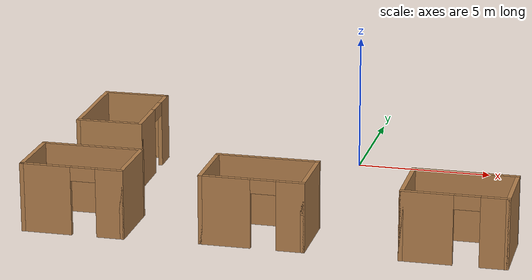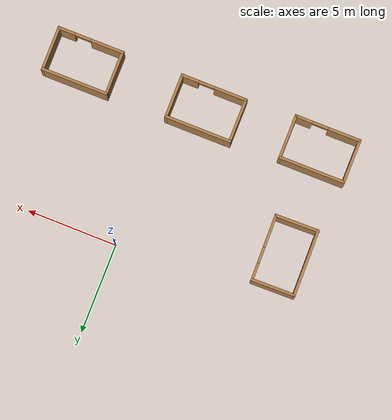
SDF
<sdf version="1.6">
 <world name="default">
  <model name="Small_Room_clone_6_clone_1_0">
   <link name="Wall_0">
    <pose>0 -1.175 0 0 -0 0</pose>
    <visual name="Wall_0_Visual_1">
     <pose>1.3725 0 1.25 0 -0 0</pose>
     <geometry><box><size>1.005 0.15 2.5</size></box></geometry>
     <material>
      <script><uri>file://media/materials/scripts/gazebo.material</uri><name>Gazebo/Wood</name></script>
      <ambient>1 1 1 1</ambient>
      <diffuse>1 1 1 1</diffuse>
      <specular>0.2 0.2 0.2 1</specular>
      <emissive>0 0 0 1</emissive>
     </material>
     <meta><layer>0</layer></meta>
    </visual>
    <visual name="Wall_0_Visual_0">
     <pose>-0.9525 0 1.25 0 -0 0</pose>
     <geometry><box><size>1.845 0.15 2.5</size></box></geometry>
     <material>
      <script><uri>file://media/materials/scripts/gazebo.material</uri><name>Gazebo/Wood</name></script>
      <ambient>1 1 1 1</ambient>
      <diffuse>1 1 1 1</diffuse>
      <specular>0.2 0.2 0.2 1</specular>
      <emissive>0 0 0 1</emissive>
     </material>
     <meta><layer>0</layer></meta>
    </visual>
    <visual name="Wall_0_Visual_2">
     <pose>0.42 0 2.25 0 -0 0</pose>
     <geometry><box><size>0.9 0.15 0.5</size></box></geometry>
     <material>
      <script><uri>file://media/materials/scripts/gazebo.material</uri><name>Gazebo/Wood</name></script>
      <ambient>1 1 1 1</ambient>
      <diffuse>1 1 1 1</diffuse>
      <specular>0.2 0.2 0.2 1</specular>
      <emissive>0 0 0 1</emissive>
     </material>
     <meta><layer>0</layer></meta>
    </visual>
    <collision name="Wall_0_Collision_0">
     <pose>-0.9525 0 1.25 0 -0 0</pose>
     <geometry><box><size>1.845 0.15 2.5</size></box></geometry>
     <surface>
      <friction>
       <ode><mu>1</mu><mu2>1</mu2><fdir1>0 0 0</fdir1><slip1>0</slip1><slip2>0</slip2></ode>
       <torsional>
        <coefficient>1</coefficient>
        <patch_radius>0</patch_radius>
        <surface_radius>0</surface_radius>
        <use_patch_radius>1</use_patch_radius>
        <ode><slip>0</slip></ode>
       </torsional>
      </friction>
      <bounce><restitution_coefficient>0</restitution_coefficient><threshold>1e+06</threshold></bounce>
      <contact>
       <collide_without_contact>0</collide_without_contact>
       <collide_without_contact_bitmask>1</collide_without_contact_bitmask>
       <collide_bitmask>1</collide_bitmask>
       <ode>
        <soft_cfm>0</soft_cfm>
        <soft_erp>0.2</soft_erp>
        <kp>1e+13</kp>
        <kd>1</kd>
        <max_vel>0.01</max_vel>
        <min_depth>0</min_depth>
       </ode>
       <bullet>
        <split_impulse>1</split_impulse>
        <split_impulse_penetration_threshold>-0.01</split_impulse_penetration_threshold>
        <soft_cfm>0</soft_cfm>
        <soft_erp>0.2</soft_erp>
        <kp>1e+13</kp>
        <kd>1</kd>
       </bullet>
      </contact>
     </surface>
    </collision>
    <collision name="Wall_0_Collision_1">
     <pose>1.3725 0 1.25 0 -0 0</pose>
     <geometry><box><size>1.005 0.15 2.5</size></box></geometry>
     <surface>
      <friction>
       <ode><mu>1</mu><mu2>1</mu2><fdir1>0 0 0</fdir1><slip1>0</slip1><slip2>0</slip2></ode>
       <torsional>
        <coefficient>1</coefficient>
        <patch_radius>0</patch_radius>
        <surface_radius>0</surface_radius>
        <use_patch_radius>1</use_patch_radius>
        <ode><slip>0</slip></ode>
       </torsional>
      </friction>
      <bounce><restitution_coefficient>0</restitution_coefficient><threshold>1e+06</threshold></bounce>
      <contact>
       <collide_without_contact>0</collide_without_contact>
       <collide_without_contact_bitmask>1</collide_without_contact_bitmask>
       <collide_bitmask>1</collide_bitmask>
       <ode>
        <soft_cfm>0</soft_cfm>
        <soft_erp>0.2</soft_erp>
        <kp>1e+13</kp>
        <kd>1</kd>
        <max_vel>0.01</max_vel>
        <min_depth>0</min_depth>
       </ode>
       <bullet>
        <split_impulse>1</split_impulse>
        <split_impulse_penetration_threshold>-0.01</split_impulse_penetration_threshold>
        <soft_cfm>0</soft_cfm>
        <soft_erp>0.2</soft_erp>
        <kp>1e+13</kp>
        <kd>1</kd>
       </bullet>
      </contact>
     </surface>
    </collision>
    <collision name="Wall_0_Collision_2">
     <pose>0.42 0 2.25 0 -0 0</pose>
     <geometry><box><size>0.9 0.15 0.5</size></box></geometry>
     <surface>
      <friction>
       <ode><mu>1</mu><mu2>1</mu2><fdir1>0 0 0</fdir1><slip1>0</slip1><slip2>0</slip2></ode>
       <torsional>
        <coefficient>1</coefficient>
        <patch_radius>0</patch_radius>
        <surface_radius>0</surface_radius>
        <use_patch_radius>1</use_patch_radius>
        <ode><slip>0</slip></ode>
       </torsional>
      </friction>
      <bounce><restitution_coefficient>0</restitution_coefficient><threshold>1e+06</threshold></bounce>
      <contact>
       <collide_without_contact>0</collide_without_contact>
       <collide_without_contact_bitmask>1</collide_without_contact_bitmask>
       <collide_bitmask>1</collide_bitmask>
       <ode>
        <soft_cfm>0</soft_cfm>
        <soft_erp>0.2</soft_erp>
        <kp>1e+13</kp>
        <kd>1</kd>
        <max_vel>0.01</max_vel>
        <min_depth>0</min_depth>
       </ode>
       <bullet>
        <split_impulse>1</split_impulse>
        <split_impulse_penetration_threshold>-0.01</split_impulse_penetration_threshold>
        <soft_cfm>0</soft_cfm>
        <soft_erp>0.2</soft_erp>
        <kp>1e+13</kp>
        <kd>1</kd>
       </bullet>
      </contact>
     </surface>
    </collision>
   </link>
   <link name="Wall_1">
    <pose>1.8 0 0 0 -0 1.5708</pose>
    <visual name="Wall_1_Visual">
     <pose>0 0 1.25 0 -0 0</pose>
     <geometry><box><size>2.5 0.15 2.5</size></box></geometry>
     <material>
      <script><uri>file://media/materials/scripts/gazebo.material</uri><name>Gazebo/Wood</name></script>
      <ambient>1 1 1 1</ambient>
      <diffuse>1 1 1 1</diffuse>
      <specular>0.2 0.2 0.2 1</specular>
      <emissive>0 0 0 1</emissive>
     </material>
     <meta><layer>0</layer></meta>
    </visual>
    <collision name="Wall_1_Collision">
     <pose>0 0 1.25 0 -0 0</pose>
     <geometry><box><size>2.5 0.15 2.5</size></box></geometry>
     <surface>
      <friction>
       <ode><mu>1</mu><mu2>1</mu2><fdir1>0 0 0</fdir1><slip1>0</slip1><slip2>0</slip2></ode>
       <torsional>
        <coefficient>1</coefficient>
        <patch_radius>0</patch_radius>
        <surface_radius>0</surface_radius>
        <use_patch_radius>1</use_patch_radius>
        <ode><slip>0</slip></ode>
       </torsional>
      </friction>
      <bounce><restitution_coefficient>0</restitution_coefficient><threshold>1e+06</threshold></bounce>
      <contact>
       <collide_without_contact>0</collide_without_contact>
       <collide_without_contact_bitmask>1</collide_without_contact_bitmask>
       <collide_bitmask>1</collide_bitmask>
       <ode>
        <soft_cfm>0</soft_cfm>
        <soft_erp>0.2</soft_erp>
        <kp>1e+13</kp>
        <kd>1</kd>
        <max_vel>0.01</max_vel>
        <min_depth>0</min_depth>
       </ode>
       <bullet>
        <split_impulse>1</split_impulse>
        <split_impulse_penetration_threshold>-0.01</split_impulse_penetration_threshold>
        <soft_cfm>0</soft_cfm>
        <soft_erp>0.2</soft_erp>
        <kp>1e+13</kp>
        <kd>1</kd>
       </bullet>
      </contact>
     </surface>
    </collision>
   </link>
   <link name="Wall_2">
    <pose>0 1.175 0 0 -0 3.14159</pose>
    <inertial>
     <mass>1</mass>
     <inertia><ixx>1</ixx><ixy>0</ixy><ixz>0</ixz><iyy>1</iyy><iyz>0</iyz><izz>1</izz></inertia>
    </inertial>
    <visual name="Wall_2_Visual">
     <pose>0 0 1.25 0 -0 0</pose>
     <geometry><box><size>3.75 0.15 2.5</size></box></geometry>
     <material>
      <script><uri>file://media/materials/scripts/gazebo.material</uri><name>Gazebo/Wood</name></script>
      <ambient>0.361 1 0.227 1</ambient>
      <diffuse>0.6 0.5 0.9 1</diffuse>
      <specular>0.6 0.4 0.2 1</specular>
      <emissive>0 0 0 1</emissive>
      <shader type="vertex"><normal_map>__default__</normal_map></shader>
     </material>
     <meta><layer>0</layer></meta>
    </visual>
    <collision name="Wall_2_Collision">
     <pose>0 0 1.25 0 -0 0</pose>
     <geometry><box><size>3.75 0.15 2.5</size></box></geometry>
     <surface>
      <friction>
       <ode><mu>1</mu><mu2>1</mu2><fdir1>0 0 0</fdir1><slip1>0</slip1><slip2>0</slip2></ode>
       <torsional>
        <coefficient>1</coefficient>
        <patch_radius>0</patch_radius>
        <surface_radius>0</surface_radius>
        <use_patch_radius>1</use_patch_radius>
        <ode><slip>0</slip></ode>
       </torsional>
      </friction>
      <bounce><restitution_coefficient>0</restitution_coefficient><threshold>1e+06</threshold></bounce>
      <contact>
       <collide_without_contact>0</collide_without_contact>
       <collide_without_contact_bitmask>1</collide_without_contact_bitmask>
       <collide_bitmask>1</collide_bitmask>
       <ode>
        <soft_cfm>0</soft_cfm>
        <soft_erp>0.2</soft_erp>
        <kp>1e+13</kp>
        <kd>1</kd>
        <max_vel>0.01</max_vel>
        <min_depth>0</min_depth>
       </ode>
       <bullet>
        <split_impulse>1</split_impulse>
        <split_impulse_penetration_threshold>-0.01</split_impulse_penetration_threshold>
        <soft_cfm>0</soft_cfm>
        <soft_erp>0.2</soft_erp>
        <kp>1e+13</kp>
        <kd>1</kd>
       </bullet>
      </contact>
     </surface>
    </collision>
   </link>
   <link name="Wall_3">
    <pose>-1.8 0 0 0 0 -1.5708</pose>
    <inertial>
     <mass>1</mass>
     <inertia><ixx>1</ixx><ixy>0</ixy><ixz>0</ixz><iyy>1</iyy><iyz>0</iyz><izz>1</izz></inertia>
    </inertial>
    <visual name="Wall_3_Visual">
     <pose>0 0 1.25 0 -0 0</pose>
     <geometry><box><size>2.5 0.15 2.5</size></box></geometry>
     <material>
      <script><uri>file://media/materials/scripts/gazebo.material</uri><name>Gazebo/Wood</name></script>
      <ambient>1 0.263 0.127 1</ambient>
      <diffuse>1 1 1 1</diffuse>
      <specular>0.2 0.2 0.2 1</specular>
      <emissive>0 0 0 1</emissive>
      <shader type="vertex"><normal_map>__default__</normal_map></shader>
     </material>
     <meta><layer>0</layer></meta>
    </visual>
    <collision name="Wall_3_Collision">
     <pose>0 0 1.25 0 -0 0</pose>
     <geometry><box><size>2.5 0.15 2.5</size></box></geometry>
     <surface>
      <friction>
       <ode><mu>1</mu><mu2>1</mu2><fdir1>0 0 0</fdir1><slip1>0</slip1><slip2>0</slip2></ode>
       <torsional>
        <coefficient>1</coefficient>
        <patch_radius>0</patch_radius>
        <surface_radius>0</surface_radius>
        <use_patch_radius>1</use_patch_radius>
        <ode><slip>0</slip></ode>
       </torsional>
      </friction>
      <bounce><restitution_coefficient>0</restitution_coefficient><threshold>1e+06</threshold></bounce>
      <contact>
       <collide_without_contact>0</collide_without_contact>
       <collide_without_contact_bitmask>1</collide_without_contact_bitmask>
       <collide_bitmask>1</collide_bitmask>
       <ode>
        <soft_cfm>0</soft_cfm>
        <soft_erp>0.2</soft_erp>
        <kp>1e+13</kp>
        <kd>1</kd>
        <max_vel>0.01</max_vel>
        <min_depth>0</min_depth>
       </ode>
       <bullet>
        <split_impulse>1</split_impulse>
        <split_impulse_penetration_threshold>-0.01</split_impulse_penetration_threshold>
        <soft_cfm>0</soft_cfm>
        <soft_erp>0.2</soft_erp>
        <kp>1e+13</kp>
        <kd>1</kd>
       </bullet>
      </contact>
     </surface>
    </collision>
   </link>
   <static>1</static>
   <pose>5.0947 -8.28426 0 0 -0 0</pose>
  </model>
  <model name="Small_Room_clone_6_clone_2">
   <link name="Wall_0">
    <pose>0 -1.175 0 0 -0 0</pose>
    <visual name="Wall_0_Visual_0">
     <pose>-0.9525 0 1.25 0 -0 0</pose>
     <geometry><box><size>1.845 0.15 2.5</size></box></geometry>
     <material>
      <script><uri>file://media/materials/scripts/gazebo.material</uri><name>Gazebo/Wood</name></script>
      <ambient>1 1 1 1</ambient>
      <diffuse>1 1 1 1</diffuse>
      <specular>0.2 0.2 0.2 1</specular>
      <emissive>0 0 0 1</emissive>
     </material>
     <meta><layer>0</layer></meta>
    </visual>
    <visual name="Wall_0_Visual_1">
     <pose>1.3725 0 1.25 0 -0 0</pose>
     <geometry><box><size>1.005 0.15 2.5</size></box></geometry>
     <material>
      <script><uri>file://media/materials/scripts/gazebo.material</uri><name>Gazebo/Wood</name></script>
      <ambient>1 1 1 1</ambient>
      <diffuse>1 1 1 1</diffuse>
      <specular>0.2 0.2 0.2 1</specular>
      <emissive>0 0 0 1</emissive>
     </material>
     <meta><layer>0</layer></meta>
    </visual>
    <visual name="Wall_0_Visual_2">
     <pose>0.42 0 2.25 0 -0 0</pose>
     <geometry><box><size>0.9 0.15 0.5</size></box></geometry>
     <material>
      <script><uri>file://media/materials/scripts/gazebo.material</uri><name>Gazebo/Wood</name></script>
      <ambient>1 1 1 1</ambient>
      <diffuse>1 1 1 1</diffuse>
      <specular>0.2 0.2 0.2 1</specular>
      <emissive>0 0 0 1</emissive>
     </material>
     <meta><layer>0</layer></meta>
    </visual>
    <collision name="Wall_0_Collision_0">
     <pose>-0.9525 0 1.25 0 -0 0</pose>
     <geometry><box><size>1.845 0.15 2.5</size></box></geometry>
     <surface>
      <friction>
       <ode><mu>1</mu><mu2>1</mu2><fdir1>0 0 0</fdir1><slip1>0</slip1><slip2>0</slip2></ode>
       <torsional>
        <coefficient>1</coefficient>
        <patch_radius>0</patch_radius>
        <surface_radius>0</surface_radius>
        <use_patch_radius>1</use_patch_radius>
        <ode><slip>0</slip></ode>
       </torsional>
      </friction>
      <bounce><restitution_coefficient>0</restitution_coefficient><threshold>1e+06</threshold></bounce>
      <contact>
       <collide_without_contact>0</collide_without_contact>
       <collide_without_contact_bitmask>1</collide_without_contact_bitmask>
       <collide_bitmask>1</collide_bitmask>
       <ode>
        <soft_cfm>0</soft_cfm>
        <soft_erp>0.2</soft_erp>
        <kp>1e+13</kp>
        <kd>1</kd>
        <max_vel>0.01</max_vel>
        <min_depth>0</min_depth>
       </ode>
       <bullet>
        <split_impulse>1</split_impulse>
        <split_impulse_penetration_threshold>-0.01</split_impulse_penetration_threshold>
        <soft_cfm>0</soft_cfm>
        <soft_erp>0.2</soft_erp>
        <kp>1e+13</kp>
        <kd>1</kd>
       </bullet>
      </contact>
     </surface>
    </collision>
    <collision name="Wall_0_Collision_1">
     <pose>1.3725 0 1.25 0 -0 0</pose>
     <geometry><box><size>1.005 0.15 2.5</size></box></geometry>
     <surface>
      <friction>
       <ode><mu>1</mu><mu2>1</mu2><fdir1>0 0 0</fdir1><slip1>0</slip1><slip2>0</slip2></ode>
       <torsional>
        <coefficient>1</coefficient>
        <patch_radius>0</patch_radius>
        <surface_radius>0</surface_radius>
        <use_patch_radius>1</use_patch_radius>
        <ode><slip>0</slip></ode>
       </torsional>
      </friction>
      <bounce><restitution_coefficient>0</restitution_coefficient><threshold>1e+06</threshold></bounce>
      <contact>
       <collide_without_contact>0</collide_without_contact>
       <collide_without_contact_bitmask>1</collide_without_contact_bitmask>
       <collide_bitmask>1</collide_bitmask>
       <ode>
        <soft_cfm>0</soft_cfm>
        <soft_erp>0.2</soft_erp>
        <kp>1e+13</kp>
        <kd>1</kd>
        <max_vel>0.01</max_vel>
        <min_depth>0</min_depth>
       </ode>
       <bullet>
        <split_impulse>1</split_impulse>
        <split_impulse_penetration_threshold>-0.01</split_impulse_penetration_threshold>
        <soft_cfm>0</soft_cfm>
        <soft_erp>0.2</soft_erp>
        <kp>1e+13</kp>
        <kd>1</kd>
       </bullet>
      </contact>
     </surface>
    </collision>
    <collision name="Wall_0_Collision_2">
     <pose>0.42 0 2.25 0 -0 0</pose>
     <geometry><box><size>0.9 0.15 0.5</size></box></geometry>
     <surface>
      <friction>
       <ode><mu>1</mu><mu2>1</mu2><fdir1>0 0 0</fdir1><slip1>0</slip1><slip2>0</slip2></ode>
       <torsional>
        <coefficient>1</coefficient>
        <patch_radius>0</patch_radius>
        <surface_radius>0</surface_radius>
        <use_patch_radius>1</use_patch_radius>
        <ode><slip>0</slip></ode>
       </torsional>
      </friction>
      <bounce><restitution_coefficient>0</restitution_coefficient><threshold>1e+06</threshold></bounce>
      <contact>
       <collide_without_contact>0</collide_without_contact>
       <collide_without_contact_bitmask>1</collide_without_contact_bitmask>
       <collide_bitmask>1</collide_bitmask>
       <ode>
        <soft_cfm>0</soft_cfm>
        <soft_erp>0.2</soft_erp>
        <kp>1e+13</kp>
        <kd>1</kd>
        <max_vel>0.01</max_vel>
        <min_depth>0</min_depth>
       </ode>
       <bullet>
        <split_impulse>1</split_impulse>
        <split_impulse_penetration_threshold>-0.01</split_impulse_penetration_threshold>
        <soft_cfm>0</soft_cfm>
        <soft_erp>0.2</soft_erp>
        <kp>1e+13</kp>
        <kd>1</kd>
       </bullet>
      </contact>
     </surface>
    </collision>
   </link>
   <link name="Wall_1">
    <pose>1.8 0 0 0 -0 1.5708</pose>
    <visual name="Wall_1_Visual">
     <pose>0 0 1.25 0 -0 0</pose>
     <geometry><box><size>2.5 0.15 2.5</size></box></geometry>
     <material>
      <script><uri>file://media/materials/scripts/gazebo.material</uri><name>Gazebo/Wood</name></script>
      <ambient>1 1 1 1</ambient>
      <diffuse>1 1 1 1</diffuse>
      <specular>0.2 0.2 0.2 1</specular>
      <emissive>0 0 0 1</emissive>
     </material>
     <meta><layer>0</layer></meta>
    </visual>
    <collision name="Wall_1_Collision">
     <pose>0 0 1.25 0 -0 0</pose>
     <geometry><box><size>2.5 0.15 2.5</size></box></geometry>
     <surface>
      <friction>
       <ode><mu>1</mu><mu2>1</mu2><fdir1>0 0 0</fdir1><slip1>0</slip1><slip2>0</slip2></ode>
       <torsional>
        <coefficient>1</coefficient>
        <patch_radius>0</patch_radius>
        <surface_radius>0</surface_radius>
        <use_patch_radius>1</use_patch_radius>
        <ode><slip>0</slip></ode>
       </torsional>
      </friction>
      <bounce><restitution_coefficient>0</restitution_coefficient><threshold>1e+06</threshold></bounce>
      <contact>
       <collide_without_contact>0</collide_without_contact>
       <collide_without_contact_bitmask>1</collide_without_contact_bitmask>
       <collide_bitmask>1</collide_bitmask>
       <ode>
        <soft_cfm>0</soft_cfm>
        <soft_erp>0.2</soft_erp>
        <kp>1e+13</kp>
        <kd>1</kd>
        <max_vel>0.01</max_vel>
        <min_depth>0</min_depth>
       </ode>
       <bullet>
        <split_impulse>1</split_impulse>
        <split_impulse_penetration_threshold>-0.01</split_impulse_penetration_threshold>
        <soft_cfm>0</soft_cfm>
        <soft_erp>0.2</soft_erp>
        <kp>1e+13</kp>
        <kd>1</kd>
       </bullet>
      </contact>
     </surface>
    </collision>
   </link>
   <link name="Wall_2">
    <pose>0 1.175 0 0 -0 3.14159</pose>
    <inertial>
     <mass>1</mass>
     <inertia><ixx>1</ixx><ixy>0</ixy><ixz>0</ixz><iyy>1</iyy><iyz>0</iyz><izz>1</izz></inertia>
    </inertial>
    <visual name="Wall_2_Visual">
     <pose>0 0 1.25 0 -0 0</pose>
     <geometry><box><size>3.75 0.15 2.5</size></box></geometry>
     <material>
      <script><uri>file://media/materials/scripts/gazebo.material</uri><name>Gazebo/Wood</name></script>
      <ambient>0.061 0.8 0.627 1</ambient>
      <diffuse>0.4 1 0.4 1</diffuse>
      <specular>0.7 0.3 0.2 1</specular>
      <emissive>0.5 0.3 0 1</emissive>
      <shader type="vertex"><normal_map>__default__</normal_map></shader>
     </material>
     <meta><layer>0</layer></meta>
    </visual>
    <collision name="Wall_2_Collision">
     <pose>0 0 1.25 0 -0 0</pose>
     <geometry><box><size>3.75 0.15 2.5</size></box></geometry>
     <surface>
      <friction>
       <ode><mu>1</mu><mu2>1</mu2><fdir1>0 0 0</fdir1><slip1>0</slip1><slip2>0</slip2></ode>
       <torsional>
        <coefficient>1</coefficient>
        <patch_radius>0</patch_radius>
        <surface_radius>0</surface_radius>
        <use_patch_radius>1</use_patch_radius>
        <ode><slip>0</slip></ode>
       </torsional>
      </friction>
      <bounce><restitution_coefficient>0</restitution_coefficient><threshold>1e+06</threshold></bounce>
      <contact>
       <collide_without_contact>0</collide_without_contact>
       <collide_without_contact_bitmask>1</collide_without_contact_bitmask>
       <collide_bitmask>1</collide_bitmask>
       <ode>
        <soft_cfm>0</soft_cfm>
        <soft_erp>0.2</soft_erp>
        <kp>1e+13</kp>
        <kd>1</kd>
        <max_vel>0.01</max_vel>
        <min_depth>0</min_depth>
       </ode>
       <bullet>
        <split_impulse>1</split_impulse>
        <split_impulse_penetration_threshold>-0.01</split_impulse_penetration_threshold>
        <soft_cfm>0</soft_cfm>
        <soft_erp>0.2</soft_erp>
        <kp>1e+13</kp>
        <kd>1</kd>
       </bullet>
      </contact>
     </surface>
    </collision>
   </link>
   <link name="Wall_3">
    <pose>-1.8 0 0 0 0 -1.5708</pose>
    <inertial>
     <mass>1</mass>
     <inertia><ixx>1</ixx><ixy>0</ixy><ixz>0</ixz><iyy>1</iyy><iyz>0</iyz><izz>1</izz></inertia>
    </inertial>
    <visual name="Wall_3_Visual">
     <pose>0 0 1.25 0 -0 0</pose>
     <geometry><box><size>2.5 0.15 2.5</size></box></geometry>
     <material>
      <script><uri>file://media/materials/scripts/gazebo.material</uri><name>Gazebo/Wood</name></script>
      <ambient>0.261 0.963 0.227 0.6</ambient>
      <diffuse>1 1 0.8 1</diffuse>
      <specular>0 0.3 0.7 1</specular>
      <emissive>0 0.7 0 1</emissive>
      <shader type="vertex"><normal_map>__default__</normal_map></shader>
     </material>
     <meta><layer>0</layer></meta>
    </visual>
    <collision name="Wall_3_Collision">
     <pose>0 0 1.25 0 -0 0</pose>
     <geometry><box><size>2.5 0.15 2.5</size></box></geometry>
     <surface>
      <friction>
       <ode><mu>1</mu><mu2>1</mu2><fdir1>0 0 0</fdir1><slip1>0</slip1><slip2>0</slip2></ode>
       <torsional>
        <coefficient>1</coefficient>
        <patch_radius>0</patch_radius>
        <surface_radius>0</surface_radius>
        <use_patch_radius>1</use_patch_radius>
        <ode><slip>0</slip></ode>
       </torsional>
      </friction>
      <bounce><restitution_coefficient>0</restitution_coefficient><threshold>1e+06</threshold></bounce>
      <contact>
       <collide_without_contact>0</collide_without_contact>
       <collide_without_contact_bitmask>1</collide_without_contact_bitmask>
       <collide_bitmask>1</collide_bitmask>
       <ode>
        <soft_cfm>0</soft_cfm>
        <soft_erp>0.2</soft_erp>
        <kp>1e+13</kp>
        <kd>1</kd>
        <max_vel>0.01</max_vel>
        <min_depth>0</min_depth>
       </ode>
       <bullet>
        <split_impulse>1</split_impulse>
        <split_impulse_penetration_threshold>-0.01</split_impulse_penetration_threshold>
        <soft_cfm>0</soft_cfm>
        <soft_erp>0.2</soft_erp>
        <kp>1e+13</kp>
        <kd>1</kd>
       </bullet>
      </contact>
     </surface>
    </collision>
   </link>
   <static>1</static>
   <pose>-1.8797 -8.31125 0 0 -0 0</pose>
  </model>
  <model name="Small_Room_clone_6_clone_0_0">
   <link name="Wall_0">
    <pose>0 -1.175 0 0 -0 0</pose>
    <visual name="Wall_0_Visual_0">
     <pose>-0.9525 0 1.25 0 -0 0</pose>
     <geometry><box><size>1.845 0.15 2.5</size></box></geometry>
     <material>
      <script><uri>file://media/materials/scripts/gazebo.material</uri><name>Gazebo/Wood</name></script>
      <ambient>1 1 1 1</ambient>
      <diffuse>1 1 1 1</diffuse>
      <specular>0.2 0.2 0.2 1</specular>
      <emissive>0 0 0 1</emissive>
     </material>
     <meta><layer>0</layer></meta>
    </visual>
    <visual name="Wall_0_Visual_1">
     <pose>1.3725 0 1.25 0 -0 0</pose>
     <geometry><box><size>1.005 0.15 2.5</size></box></geometry>
     <material>
      <script><uri>file://media/materials/scripts/gazebo.material</uri><name>Gazebo/Wood</name></script>
      <ambient>1 1 1 1</ambient>
      <diffuse>1 1 1 1</diffuse>
      <specular>0.2 0.2 0.2 1</specular>
      <emissive>0 0 0 1</emissive>
     </material>
     <meta><layer>0</layer></meta>
    </visual>
    <visual name="Wall_0_Visual_2">
     <pose>0.42 0 2.25 0 -0 0</pose>
     <geometry><box><size>0.9 0.15 0.5</size></box></geometry>
     <material>
      <script><uri>file://media/materials/scripts/gazebo.material</uri><name>Gazebo/Wood</name></script>
      <ambient>1 1 1 1</ambient>
      <diffuse>1 1 1 1</diffuse>
      <specular>0.2 0.2 0.2 1</specular>
      <emissive>0 0 0 1</emissive>
     </material>
     <meta><layer>0</layer></meta>
    </visual>
    <collision name="Wall_0_Collision_0">
     <pose>-0.9525 0 1.25 0 -0 0</pose>
     <geometry><box><size>1.845 0.15 2.5</size></box></geometry>
     <surface>
      <friction>
       <ode><mu>1</mu><mu2>1</mu2><fdir1>0 0 0</fdir1><slip1>0</slip1><slip2>0</slip2></ode>
       <torsional>
        <coefficient>1</coefficient>
        <patch_radius>0</patch_radius>
        <surface_radius>0</surface_radius>
        <use_patch_radius>1</use_patch_radius>
        <ode><slip>0</slip></ode>
       </torsional>
      </friction>
      <bounce><restitution_coefficient>0</restitution_coefficient><threshold>1e+06</threshold></bounce>
      <contact>
       <collide_without_contact>0</collide_without_contact>
       <collide_without_contact_bitmask>1</collide_without_contact_bitmask>
       <collide_bitmask>1</collide_bitmask>
       <ode>
        <soft_cfm>0</soft_cfm>
        <soft_erp>0.2</soft_erp>
        <kp>1e+13</kp>
        <kd>1</kd>
        <max_vel>0.01</max_vel>
        <min_depth>0</min_depth>
       </ode>
       <bullet>
        <split_impulse>1</split_impulse>
        <split_impulse_penetration_threshold>-0.01</split_impulse_penetration_threshold>
        <soft_cfm>0</soft_cfm>
        <soft_erp>0.2</soft_erp>
        <kp>1e+13</kp>
        <kd>1</kd>
       </bullet>
      </contact>
     </surface>
    </collision>
    <collision name="Wall_0_Collision_1">
     <pose>1.3725 0 1.25 0 -0 0</pose>
     <geometry><box><size>1.005 0.15 2.5</size></box></geometry>
     <surface>
      <friction>
       <ode><mu>1</mu><mu2>1</mu2><fdir1>0 0 0</fdir1><slip1>0</slip1><slip2>0</slip2></ode>
       <torsional>
        <coefficient>1</coefficient>
        <patch_radius>0</patch_radius>
        <surface_radius>0</surface_radius>
        <use_patch_radius>1</use_patch_radius>
        <ode><slip>0</slip></ode>
       </torsional>
      </friction>
      <bounce><restitution_coefficient>0</restitution_coefficient><threshold>1e+06</threshold></bounce>
      <contact>
       <collide_without_contact>0</collide_without_contact>
       <collide_without_contact_bitmask>1</collide_without_contact_bitmask>
       <collide_bitmask>1</collide_bitmask>
       <ode>
        <soft_cfm>0</soft_cfm>
        <soft_erp>0.2</soft_erp>
        <kp>1e+13</kp>
        <kd>1</kd>
        <max_vel>0.01</max_vel>
        <min_depth>0</min_depth>
       </ode>
       <bullet>
        <split_impulse>1</split_impulse>
        <split_impulse_penetration_threshold>-0.01</split_impulse_penetration_threshold>
        <soft_cfm>0</soft_cfm>
        <soft_erp>0.2</soft_erp>
        <kp>1e+13</kp>
        <kd>1</kd>
       </bullet>
      </contact>
     </surface>
    </collision>
    <collision name="Wall_0_Collision_2">
     <pose>0.42 0 2.25 0 -0 0</pose>
     <geometry><box><size>0.9 0.15 0.5</size></box></geometry>
     <surface>
      <friction>
       <ode><mu>1</mu><mu2>1</mu2><fdir1>0 0 0</fdir1><slip1>0</slip1><slip2>0</slip2></ode>
       <torsional>
        <coefficient>1</coefficient>
        <patch_radius>0</patch_radius>
        <surface_radius>0</surface_radius>
        <use_patch_radius>1</use_patch_radius>
        <ode><slip>0</slip></ode>
       </torsional>
      </friction>
      <bounce><restitution_coefficient>0</restitution_coefficient><threshold>1e+06</threshold></bounce>
      <contact>
       <collide_without_contact>0</collide_without_contact>
       <collide_without_contact_bitmask>1</collide_without_contact_bitmask>
       <collide_bitmask>1</collide_bitmask>
       <ode>
        <soft_cfm>0</soft_cfm>
        <soft_erp>0.2</soft_erp>
        <kp>1e+13</kp>
        <kd>1</kd>
        <max_vel>0.01</max_vel>
        <min_depth>0</min_depth>
       </ode>
       <bullet>
        <split_impulse>1</split_impulse>
        <split_impulse_penetration_threshold>-0.01</split_impulse_penetration_threshold>
        <soft_cfm>0</soft_cfm>
        <soft_erp>0.2</soft_erp>
        <kp>1e+13</kp>
        <kd>1</kd>
       </bullet>
      </contact>
     </surface>
    </collision>
   </link>
   <link name="Wall_1">
    <pose>1.8 0 0 0 -0 1.5708</pose>
    <inertial>
     <mass>1</mass>
     <inertia><ixx>1</ixx><ixy>0</ixy><ixz>0</ixz><iyy>1</iyy><iyz>0</iyz><izz>1</izz></inertia>
    </inertial>
    <visual name="Wall_1_Visual">
     <pose>0 0 1.25 0 -0 0</pose>
     <geometry><box><size>2.5 0.15 2.5</size></box></geometry>
     <material>
      <script><uri>file://media/materials/scripts/gazebo.material</uri><name>Gazebo/Wood</name></script>
      <ambient>0.5 0.4 1 1</ambient>
      <diffuse>0.5 0.4 0.7 1</diffuse>
      <specular>0.2 0 0.6 1</specular>
      <emissive>0 0 0 1</emissive>
      <shader type="vertex"><normal_map>__default__</normal_map></shader>
     </material>
     <meta><layer>0</layer></meta>
    </visual>
    <collision name="Wall_1_Collision">
     <pose>0 0 1.25 0 -0 0</pose>
     <geometry><box><size>2.5 0.15 2.5</size></box></geometry>
     <surface>
      <friction>
       <ode><mu>1</mu><mu2>1</mu2><fdir1>0 0 0</fdir1><slip1>0</slip1><slip2>0</slip2></ode>
       <torsional>
        <coefficient>1</coefficient>
        <patch_radius>0</patch_radius>
        <surface_radius>0</surface_radius>
        <use_patch_radius>1</use_patch_radius>
        <ode><slip>0</slip></ode>
       </torsional>
      </friction>
      <bounce><restitution_coefficient>0</restitution_coefficient><threshold>1e+06</threshold></bounce>
      <contact>
       <collide_without_contact>0</collide_without_contact>
       <collide_without_contact_bitmask>1</collide_without_contact_bitmask>
       <collide_bitmask>1</collide_bitmask>
       <ode>
        <soft_cfm>0</soft_cfm>
        <soft_erp>0.2</soft_erp>
        <kp>1e+13</kp>
        <kd>1</kd>
        <max_vel>0.01</max_vel>
        <min_depth>0</min_depth>
       </ode>
       <bullet>
        <split_impulse>1</split_impulse>
        <split_impulse_penetration_threshold>-0.01</split_impulse_penetration_threshold>
        <soft_cfm>0</soft_cfm>
        <soft_erp>0.2</soft_erp>
        <kp>1e+13</kp>
        <kd>1</kd>
       </bullet>
      </contact>
     </surface>
    </collision>
   </link>
   <link name="Wall_2">
    <pose>0 1.175 0 0 -0 3.14159</pose>
    <inertial>
     <mass>1</mass>
     <inertia><ixx>1</ixx><ixy>0</ixy><ixz>0</ixz><iyy>1</iyy><iyz>0</iyz><izz>1</izz></inertia>
    </inertial>
    <visual name="Wall_2_Visual">
     <pose>0 0 1.25 0 -0 0</pose>
     <geometry><box><size>3.75 0.15 2.5</size></box></geometry>
     <material>
      <script><uri>file://media/materials/scripts/gazebo.material</uri><name>Gazebo/Wood</name></script>
      <ambient>0.261 0.663 0.627 1</ambient>
      <diffuse>0.3 1 1 1</diffuse>
      <specular>0.2 0.2 0.6 1</specular>
      <emissive>0 0 0.4 1</emissive>
      <shader type="vertex"><normal_map>__default__</normal_map></shader>
      <lighting>0</lighting>
     </material>
     <meta><layer>0</layer></meta>
    </visual>
    <collision name="Wall_2_Collision">
     <pose>0 0 1.25 0 -0 0</pose>
     <geometry><box><size>3.75 0.15 2.5</size></box></geometry>
     <surface>
      <friction>
       <ode><mu>1</mu><mu2>1</mu2><fdir1>0 0 0</fdir1><slip1>0</slip1><slip2>0</slip2></ode>
       <torsional>
        <coefficient>1</coefficient>
        <patch_radius>0</patch_radius>
        <surface_radius>0</surface_radius>
        <use_patch_radius>1</use_patch_radius>
        <ode><slip>0</slip></ode>
       </torsional>
      </friction>
      <bounce><restitution_coefficient>0</restitution_coefficient><threshold>1e+06</threshold></bounce>
      <contact>
       <collide_without_contact>0</collide_without_contact>
       <collide_without_contact_bitmask>1</collide_without_contact_bitmask>
       <collide_bitmask>1</collide_bitmask>
       <ode>
        <soft_cfm>0</soft_cfm>
        <soft_erp>0.2</soft_erp>
        <kp>1e+13</kp>
        <kd>1</kd>
        <max_vel>0.01</max_vel>
        <min_depth>0</min_depth>
       </ode>
       <bullet>
        <split_impulse>1</split_impulse>
        <split_impulse_penetration_threshold>-0.01</split_impulse_penetration_threshold>
        <soft_cfm>0</soft_cfm>
        <soft_erp>0.2</soft_erp>
        <kp>1e+13</kp>
        <kd>1</kd>
       </bullet>
      </contact>
     </surface>
    </collision>
   </link>
   <link name="Wall_3">
    <pose>-1.8 0 0 0 0 -1.5708</pose>
    <inertial>
     <mass>1</mass>
     <inertia><ixx>1</ixx><ixy>0</ixy><ixz>0</ixz><iyy>1</iyy><iyz>0</iyz><izz>1</izz></inertia>
    </inertial>
    <visual name="Wall_3_Visual">
     <pose>0 0 1.25 0 -0 0</pose>
     <geometry><box><size>2.5 0.15 2.5</size></box></geometry>
     <material>
      <script><uri>file://media/materials/scripts/gazebo.material</uri><name>Gazebo/Wood</name></script>
      <ambient>0.161 0.363 0.9 1</ambient>
      <diffuse>0.2 0.3 0.9 1</diffuse>
      <specular>0.2 0.2 0.8 1</specular>
      <emissive>0 0 0 1</emissive>
      <shader type="vertex"><normal_map>__default__</normal_map></shader>
     </material>
     <meta><layer>0</layer></meta>
    </visual>
    <collision name="Wall_3_Collision">
     <pose>0 0 1.25 0 -0 0</pose>
     <geometry><box><size>2.5 0.15 2.5</size></box></geometry>
     <surface>
      <friction>
       <ode><mu>1</mu><mu2>1</mu2><fdir1>0 0 0</fdir1><slip1>0</slip1><slip2>0</slip2></ode>
       <torsional>
        <coefficient>1</coefficient>
        <patch_radius>0</patch_radius>
        <surface_radius>0</surface_radius>
        <use_patch_radius>1</use_patch_radius>
        <ode><slip>0</slip></ode>
       </torsional>
      </friction>
      <bounce><restitution_coefficient>0</restitution_coefficient><threshold>1e+06</threshold></bounce>
      <contact>
       <collide_without_contact>0</collide_without_contact>
       <collide_without_contact_bitmask>1</collide_without_contact_bitmask>
       <collide_bitmask>1</collide_bitmask>
       <ode>
        <soft_cfm>0</soft_cfm>
        <soft_erp>0.2</soft_erp>
        <kp>1e+13</kp>
        <kd>1</kd>
        <max_vel>0.01</max_vel>
        <min_depth>0</min_depth>
       </ode>
       <bullet>
        <split_impulse>1</split_impulse>
        <split_impulse_penetration_threshold>-0.01</split_impulse_penetration_threshold>
        <soft_cfm>0</soft_cfm>
        <soft_erp>0.2</soft_erp>
        <kp>1e+13</kp>
        <kd>1</kd>
       </bullet>
      </contact>
     </surface>
    </collision>
   </link>
   <static>1</static>
   <pose>-8.24169 -8.48704 0 0 -0 0</pose>
  </model>
  <model name="Small_Room_clone_7">
   <link name="Wall_0">
    <pose>-0 -1.175 0 0 -0 0</pose>
    <inertial>
     <mass>1</mass>
     <inertia><ixx>1</ixx><ixy>0</ixy><ixz>0</ixz><iyy>1</iyy><iyz>0</iyz><izz>1</izz></inertia>
    </inertial>
    <visual name="Wall_0_Visual_0">
     <pose>-0.9525 0 1.25 0 -0 0</pose>
     <geometry><box><size>1.845 0.15 2.5</size></box></geometry>
     <material>
      <script><uri>file://media/materials/scripts/gazebo.material</uri><name>Gazebo/Wood</name></script>
      <ambient>0 1 1 1</ambient>
      <diffuse>1 1 1 1</diffuse>
      <specular>0.2 0.2 0.2 1</specular>
      <emissive>0 0 0 1</emissive>
      <shader type="vertex"><normal_map>__default__</normal_map></shader>
     </material>
     <meta><layer>0</layer></meta>
    </visual>
    <visual name="Wall_0_Visual_1">
     <pose>1.3725 0 1.25 0 -0 0</pose>
     <geometry><box><size>1.005 0.15 2.5</size></box></geometry>
     <material>
      <script><uri>file://media/materials/scripts/gazebo.material</uri><name>Gazebo/Wood</name></script>
      <ambient>0 1 1 1</ambient>
      <diffuse>1 1 1 1</diffuse>
      <specular>0.2 0.2 0.2 1</specular>
      <emissive>0 0 0 1</emissive>
      <shader type="vertex"><normal_map>__default__</normal_map></shader>
     </material>
     <meta><layer>0</layer></meta>
    </visual>
    <visual name="Wall_0_Visual_2">
     <pose>0.42 0 2.25 0 -0 0</pose>
     <geometry><box><size>0.9 0.15 0.5</size></box></geometry>
     <material>
      <script><uri>file://media/materials/scripts/gazebo.material</uri><name>Gazebo/Wood</name></script>
      <ambient>0 1 1 1</ambient>
      <diffuse>1 1 1 1</diffuse>
      <specular>0.2 0.2 0.2 1</specular>
      <emissive>0 0 0 1</emissive>
      <shader type="vertex"><normal_map>__default__</normal_map></shader>
     </material>
     <meta><layer>0</layer></meta>
    </visual>
    <collision name="Wall_0_Collision_0">
     <pose>-0.9525 0 1.25 0 -0 0</pose>
     <geometry><box><size>1.845 0.15 2.5</size></box></geometry>
     <surface>
      <friction>
       <ode><mu>1</mu><mu2>1</mu2><fdir1>0 0 0</fdir1><slip1>0</slip1><slip2>0</slip2></ode>
       <torsional>
        <coefficient>1</coefficient>
        <patch_radius>0</patch_radius>
        <surface_radius>0</surface_radius>
        <use_patch_radius>1</use_patch_radius>
        <ode><slip>0</slip></ode>
       </torsional>
      </friction>
      <bounce><restitution_coefficient>0</restitution_coefficient><threshold>1e+06</threshold></bounce>
      <contact>
       <collide_without_contact>0</collide_without_contact>
       <collide_without_contact_bitmask>1</collide_without_contact_bitmask>
       <collide_bitmask>1</collide_bitmask>
       <ode>
        <soft_cfm>0</soft_cfm>
        <soft_erp>0.2</soft_erp>
        <kp>1e+13</kp>
        <kd>1</kd>
        <max_vel>0.01</max_vel>
        <min_depth>0</min_depth>
       </ode>
       <bullet>
        <split_impulse>1</split_impulse>
        <split_impulse_penetration_threshold>-0.01</split_impulse_penetration_threshold>
        <soft_cfm>0</soft_cfm>
        <soft_erp>0.2</soft_erp>
        <kp>1e+13</kp>
        <kd>1</kd>
       </bullet>
      </contact>
     </surface>
    </collision>
    <collision name="Wall_0_Collision_1">
     <pose>1.3725 0 1.25 0 -0 0</pose>
     <geometry><box><size>1.005 0.15 2.5</size></box></geometry>
     <surface>
      <friction>
       <ode><mu>1</mu><mu2>1</mu2><fdir1>0 0 0</fdir1><slip1>0</slip1><slip2>0</slip2></ode>
       <torsional>
        <coefficient>1</coefficient>
        <patch_radius>0</patch_radius>
        <surface_radius>0</surface_radius>
        <use_patch_radius>1</use_patch_radius>
        <ode><slip>0</slip></ode>
       </torsional>
      </friction>
      <bounce><restitution_coefficient>0</restitution_coefficient><threshold>1e+06</threshold></bounce>
      <contact>
       <collide_without_contact>0</collide_without_contact>
       <collide_without_contact_bitmask>1</collide_without_contact_bitmask>
       <collide_bitmask>1</collide_bitmask>
       <ode>
        <soft_cfm>0</soft_cfm>
        <soft_erp>0.2</soft_erp>
        <kp>1e+13</kp>
        <kd>1</kd>
        <max_vel>0.01</max_vel>
        <min_depth>0</min_depth>
       </ode>
       <bullet>
        <split_impulse>1</split_impulse>
        <split_impulse_penetration_threshold>-0.01</split_impulse_penetration_threshold>
        <soft_cfm>0</soft_cfm>
        <soft_erp>0.2</soft_erp>
        <kp>1e+13</kp>
        <kd>1</kd>
       </bullet>
      </contact>
     </surface>
    </collision>
    <collision name="Wall_0_Collision_2">
     <pose>0.42 0 2.25 0 -0 0</pose>
     <geometry><box><size>0.9 0.15 0.5</size></box></geometry>
     <surface>
      <friction>
       <ode><mu>1</mu><mu2>1</mu2><fdir1>0 0 0</fdir1><slip1>0</slip1><slip2>0</slip2></ode>
       <torsional>
        <coefficient>1</coefficient>
        <patch_radius>0</patch_radius>
        <surface_radius>0</surface_radius>
        <use_patch_radius>1</use_patch_radius>
        <ode><slip>0</slip></ode>
       </torsional>
      </friction>
      <bounce><restitution_coefficient>0</restitution_coefficient><threshold>1e+06</threshold></bounce>
      <contact>
       <collide_without_contact>0</collide_without_contact>
       <collide_without_contact_bitmask>1</collide_without_contact_bitmask>
       <collide_bitmask>1</collide_bitmask>
       <ode>
        <soft_cfm>0</soft_cfm>
        <soft_erp>0.2</soft_erp>
        <kp>1e+13</kp>
        <kd>1</kd>
        <max_vel>0.01</max_vel>
        <min_depth>0</min_depth>
       </ode>
       <bullet>
        <split_impulse>1</split_impulse>
        <split_impulse_penetration_threshold>-0.01</split_impulse_penetration_threshold>
        <soft_cfm>0</soft_cfm>
        <soft_erp>0.2</soft_erp>
        <kp>1e+13</kp>
        <kd>1</kd>
       </bullet>
      </contact>
     </surface>
    </collision>
   </link>
   <link name="Wall_1">
    <pose>1.8 -0 0 0 -0 1.5708</pose>
    <inertial>
     <mass>1</mass>
     <inertia><ixx>1</ixx><ixy>0</ixy><ixz>0</ixz><iyy>1</iyy><iyz>0</iyz><izz>1</izz></inertia>
    </inertial>
    <visual name="Wall_1_Visual">
     <pose>0 0 1.25 0 -0 0</pose>
     <geometry><box><size>2.5 0.15 2.5</size></box></geometry>
     <material>
      <script><uri>file://media/materials/scripts/gazebo.material</uri><name>Gazebo/Wood</name></script>
      <ambient>0.4 0 1 1</ambient>
      <diffuse>0.5 0.1 0.9 1</diffuse>
      <specular>0.2 0.2 0.3 1</specular>
      <emissive>0 0 0.1 1</emissive>
      <shader type="vertex"><normal_map>__default__</normal_map></shader>
     </material>
     <meta><layer>0</layer></meta>
    </visual>
    <collision name="Wall_1_Collision">
     <pose>0 0 1.25 0 -0 0</pose>
     <geometry><box><size>2.5 0.15 2.5</size></box></geometry>
     <surface>
      <friction>
       <ode><mu>1</mu><mu2>1</mu2><fdir1>0 0 0</fdir1><slip1>0</slip1><slip2>0</slip2></ode>
       <torsional>
        <coefficient>1</coefficient>
        <patch_radius>0</patch_radius>
        <surface_radius>0</surface_radius>
        <use_patch_radius>1</use_patch_radius>
        <ode><slip>0</slip></ode>
       </torsional>
      </friction>
      <bounce><restitution_coefficient>0</restitution_coefficient><threshold>1e+06</threshold></bounce>
      <contact>
       <collide_without_contact>0</collide_without_contact>
       <collide_without_contact_bitmask>1</collide_without_contact_bitmask>
       <collide_bitmask>1</collide_bitmask>
       <ode>
        <soft_cfm>0</soft_cfm>
        <soft_erp>0.2</soft_erp>
        <kp>1e+13</kp>
        <kd>1</kd>
        <max_vel>0.01</max_vel>
        <min_depth>0</min_depth>
       </ode>
       <bullet>
        <split_impulse>1</split_impulse>
        <split_impulse_penetration_threshold>-0.01</split_impulse_penetration_threshold>
        <soft_cfm>0</soft_cfm>
        <soft_erp>0.2</soft_erp>
        <kp>1e+13</kp>
        <kd>1</kd>
       </bullet>
      </contact>
     </surface>
    </collision>
   </link>
   <link name="Wall_2">
    <pose>0 1.175 0 0 -0 3.14159</pose>
    <visual name="Wall_2_Visual">
     <pose>0 0 1.25 0 -0 0</pose>
     <geometry><box><size>3.75 0.15 2.5</size></box></geometry>
     <material>
      <script><uri>file://media/materials/scripts/gazebo.material</uri><name>Gazebo/Wood</name></script>
      <ambient>0.760784 0.662745 0.627451 1</ambient>
      <diffuse>1 1 1 1</diffuse>
      <specular>0.2 0.2 0.2 1</specular>
      <emissive>0 0 0 1</emissive>
     </material>
     <meta><layer>0</layer></meta>
    </visual>
    <collision name="Wall_2_Collision">
     <pose>0 0 1.25 0 -0 0</pose>
     <geometry><box><size>3.75 0.15 2.5</size></box></geometry>
     <surface>
      <friction>
       <ode><mu>1</mu><mu2>1</mu2><fdir1>0 0 0</fdir1><slip1>0</slip1><slip2>0</slip2></ode>
       <torsional>
        <coefficient>1</coefficient>
        <patch_radius>0</patch_radius>
        <surface_radius>0</surface_radius>
        <use_patch_radius>1</use_patch_radius>
        <ode><slip>0</slip></ode>
       </torsional>
      </friction>
      <bounce><restitution_coefficient>0</restitution_coefficient><threshold>1e+06</threshold></bounce>
      <contact>
       <collide_without_contact>0</collide_without_contact>
       <collide_without_contact_bitmask>1</collide_without_contact_bitmask>
       <collide_bitmask>1</collide_bitmask>
       <ode>
        <soft_cfm>0</soft_cfm>
        <soft_erp>0.2</soft_erp>
        <kp>1e+13</kp>
        <kd>1</kd>
        <max_vel>0.01</max_vel>
        <min_depth>0</min_depth>
       </ode>
       <bullet>
        <split_impulse>1</split_impulse>
        <split_impulse_penetration_threshold>-0.01</split_impulse_penetration_threshold>
        <soft_cfm>0</soft_cfm>
        <soft_erp>0.2</soft_erp>
        <kp>1e+13</kp>
        <kd>1</kd>
       </bullet>
      </contact>
     </surface>
    </collision>
   </link>
   <link name="Wall_3">
    <pose>-1.8 0 0 0 0 -1.5708</pose>
    <inertial>
     <mass>1</mass>
     <inertia><ixx>1</ixx><ixy>0</ixy><ixz>0</ixz><iyy>1</iyy><iyz>0</iyz><izz>1</izz></inertia>
    </inertial>
    <visual name="Wall_3_Visual">
     <pose>0 0 1.25 0 -0 0</pose>
     <geometry><box><size>2.5 0.15 2.5</size></box></geometry>
     <material>
      <script><uri>file://media/materials/scripts/gazebo.material</uri><name>Gazebo/Wood</name></script>
      <ambient>0.761 0 0 1</ambient>
      <diffuse>0.4 0.2 0.5 1</diffuse>
      <specular>0.7 0.2 0.4 1</specular>
      <emissive>0 0 0 1</emissive>
      <shader type="vertex"><normal_map>__default__</normal_map></shader>
     </material>
     <meta><layer>0</layer></meta>
    </visual>
    <collision name="Wall_3_Collision">
     <pose>0 0 1.25 0 -0 0</pose>
     <geometry><box><size>2.5 0.15 2.5</size></box></geometry>
     <surface>
      <friction>
       <ode><mu>1</mu><mu2>1</mu2><fdir1>0 0 0</fdir1><slip1>0</slip1><slip2>0</slip2></ode>
       <torsional>
        <coefficient>1</coefficient>
        <patch_radius>0</patch_radius>
        <surface_radius>0</surface_radius>
        <use_patch_radius>1</use_patch_radius>
        <ode><slip>0</slip></ode>
       </torsional>
      </friction>
      <bounce><restitution_coefficient>0</restitution_coefficient><threshold>1e+06</threshold></bounce>
      <contact>
       <collide_without_contact>0</collide_without_contact>
       <collide_without_contact_bitmask>1</collide_without_contact_bitmask>
       <collide_bitmask>1</collide_bitmask>
       <ode>
        <soft_cfm>0</soft_cfm>
        <soft_erp>0.2</soft_erp>
        <kp>1e+13</kp>
        <kd>1</kd>
        <max_vel>0.01</max_vel>
        <min_depth>0</min_depth>
       </ode>
       <bullet>
        <split_impulse>1</split_impulse>
        <split_impulse_penetration_threshold>-0.01</split_impulse_penetration_threshold>
        <soft_cfm>0</soft_cfm>
        <soft_erp>0.2</soft_erp>
        <kp>1e+13</kp>
        <kd>1</kd>
       </bullet>
      </contact>
     </surface>
    </collision>
   </link>
   <static>1</static>
   <pose>-8.57107 -2.60077 0 0 -0 1.58803</pose>
  </model>
 </world>
</sdf>
